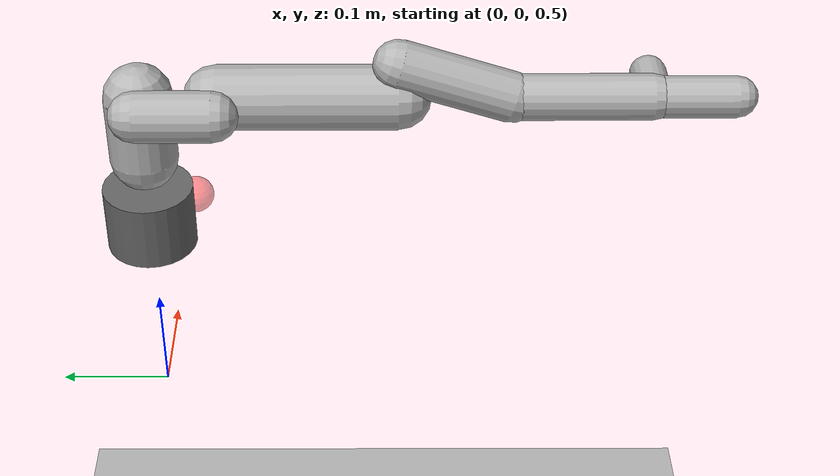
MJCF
<mujoco model="openarm7">
  <compiler angle="radian" inertiafromgeom="false"/>

  <option gravity="0 0 -9.81" timestep="0.002"/>

  <default>
    <joint damping="0.5" armature="0.001"/>
    <geom contype="1" conaffinity="1" rgba="0.7 0.7 0.7 1"/>
    <motor ctrlrange="-50 50" ctrllimited="true"/>
  </default>

  <asset>
    <texture type="skybox" builtin="gradient" rgb1="0.3 0.5 0.7" rgb2="0 0 0" width="512" height="512"/>
    <texture name="grid" type="2d" builtin="checker" rgb1="0.2 0.3 0.4" rgb2="0.1 0.15 0.2" width="512" height="512"/>
    <material name="floor_mat" texture="grid" texrepeat="8 8" reflectance="0.2"/>
    <material name="link_mat" rgba="0.6 0.65 0.7 1"/>
    <material name="joint_mat" rgba="0.3 0.3 0.8 1"/>
    <material name="ee_mat" rgba="0.9 0.2 0.2 1"/>
  </asset>

  <worldbody>
    <light diffuse="0.8 0.8 0.8" pos="0 0 3" dir="0 0 -1"/>
    <geom type="plane" size="2 2 0.01" material="floor_mat"/>

    <!-- Target site (moved by env at each reset) -->
    <body name="target" pos="0.3 0 0.5" mocap="true">
      <geom type="sphere" size="0.02" rgba="1 0.2 0.2 0.5" contype="0" conaffinity="0"/>
    </body>

    <!-- Base mount (fixed) -->
    <body name="base" pos="0 0 0.698">
      <geom type="cylinder" size="0.04 0.03" rgba="0.4 0.4 0.4 1"/>

      <!-- Link 0 / Joint 1 (Z-axis) -->
      <body name="link0" pos="0 0 0.0625">
        <joint name="j1" type="hinge" axis="0 0 1"
               limited="true" range="-1.309 1.309"/>
        <inertial pos="0.00115 0.0000332 0.0540"
                  mass="1.1417"
                  fullinertia="0.001567 0.001273 0.001016 -1e-06 -2.9e-05 1e-06"/>
        <geom type="capsule" fromto="0 0 0  0 0 0.06" size="0.03" material="link_mat"/>
        <geom type="sphere" pos="0 0 0" size="0.025" material="joint_mat"/>

        <!-- Link 1 / Joint 2 (-X axis, with 90° X rotation) -->
        <body name="link1" pos="-0.0301 0 0.06" euler="1.5708 0 0">
          <joint name="j2" type="hinge" axis="-1 0 0"
                 limited="true" range="-0.157 1.571"/>
          <inertial pos="0.00840 0.0 0.03257"
                    mass="0.2775"
                    fullinertia="0.000359 0.000376 0.000232 1e-06 -0.000109 1e-06"/>
          <geom type="capsule" fromto="0 0 0  0 0 0.065" size="0.022" material="link_mat"/>
          <geom type="sphere" pos="0 0 0" size="0.02" material="joint_mat"/>

          <!-- Link 2 / Joint 3 (Z-axis) -->
          <body name="link2" pos="0.0301 0 0.06625">
            <joint name="j3" type="hinge" axis="0 0 1"
                   limited="true" range="-1.484 1.484"/>
            <inertial pos="-0.00210 0.000555 0.0905"
                      mass="1.0739"
                      fullinertia="0.004372 0.004319 0.000661 1e-06 1.1e-05 -3.6e-05"/>
            <geom type="capsule" fromto="0 0 0  0 0 0.154" size="0.028" material="link_mat"/>
            <geom type="sphere" pos="0 0 0" size="0.02" material="joint_mat"/>

            <!-- Link 3 / Joint 4 (Y-axis) -->
            <body name="link3" pos="0 0.0315 0.15375">
              <joint name="j4" type="hinge" axis="0 1 0"
                     limited="true" range="0 2.356"/>
              <inertial pos="-0.00290 -0.03031 0.06340"
                        mass="0.6349"
                        fullinertia="0.000623 0.000511 0.000334 -1e-06 -1.9e-05 3.8e-05"/>
              <geom type="capsule" fromto="0 0 0  0 -0.0315 0.096" size="0.022" material="link_mat"/>
              <geom type="sphere" pos="0 0 0" size="0.018" material="joint_mat"/>

              <!-- Link 4 / Joint 5 (Z-axis) -->
              <body name="link4" pos="0 -0.0315 0.0955">
                <joint name="j5" type="hinge" axis="0 0 1"
                       limited="true" range="-1.484 1.484"/>
                <inertial pos="-0.00305 0.000887 0.04308"
                          mass="0.6157"
                          fullinertia="0.000423 0.000445 0.000324 -8e-06 6e-06 -6e-06"/>
                <geom type="capsule" fromto="0 0 0  0 0 0.12" size="0.02" material="link_mat"/>
                <geom type="sphere" pos="0 0 0" size="0.016" material="joint_mat"/>

                <!-- Link 5 / Joint 6 (X-axis) -->
                <body name="link5" pos="0.0375 0 0.1205">
                  <joint name="j6" type="hinge" axis="1 0 0"
                         limited="true" range="-0.698 0.698"/>
                  <inertial pos="-0.03714 0.000332 -0.0000950"
                            mass="0.4752"
                            fullinertia="0.000143 0.000157 0.000159 1e-06 1e-06 1e-06"/>
                  <geom type="capsule" fromto="0 0 0  -0.0375 0 0" size="0.016" material="link_mat"/>
                  <geom type="sphere" pos="0 0 0" size="0.014" material="joint_mat"/>

                  <!-- Link 6 / Joint 7 (Y-axis) -->
                  <body name="link6" pos="-0.0375 0 0">
                    <joint name="j7" type="hinge" axis="0 1 0"
                           limited="true" range="-1.396 1.396"/>
                    <inertial pos="0.0000688 0.01266 0.06952"
                              mass="0.4660"
                              fullinertia="0.000639 0.000497 0.000342 1e-06 1e-06 8.9e-05"/>
                    <geom type="capsule" fromto="0 0 0  0 0 0.07" size="0.018" material="link_mat"/>
                    <geom type="sphere" pos="0 0 0" size="0.014" material="joint_mat"/>

                    <!-- End-effector site -->
                    <site name="ee" pos="0 0 0.07" size="0.015" rgba="1 0.2 0.2 1"/>

                  </body>
                </body>
              </body>
            </body>
          </body>
        </body>
      </body>
    </body>
  </worldbody>

  <actuator>
    <motor joint="j1" name="a_j1" gear="1"/>
    <motor joint="j2" name="a_j2" gear="1"/>
    <motor joint="j3" name="a_j3" gear="1"/>
    <motor joint="j4" name="a_j4" gear="1"/>
    <motor joint="j5" name="a_j5" gear="1"/>
    <motor joint="j6" name="a_j6" gear="1"/>
    <motor joint="j7" name="a_j7" gear="1"/>
  </actuator>

  <sensor>
    <jointpos joint="j1" name="j1_pos"/>
    <jointpos joint="j2" name="j2_pos"/>
    <jointpos joint="j3" name="j3_pos"/>
    <jointpos joint="j4" name="j4_pos"/>
    <jointpos joint="j5" name="j5_pos"/>
    <jointpos joint="j6" name="j6_pos"/>
    <jointpos joint="j7" name="j7_pos"/>
    <jointvel joint="j1" name="j1_vel"/>
    <jointvel joint="j2" name="j2_vel"/>
    <jointvel joint="j3" name="j3_vel"/>
    <jointvel joint="j4" name="j4_vel"/>
    <jointvel joint="j5" name="j5_vel"/>
    <jointvel joint="j6" name="j6_vel"/>
    <jointvel joint="j7" name="j7_vel"/>
    <framepos objtype="site" objname="ee" name="ee_pos"/>
  </sensor>
</mujoco>
